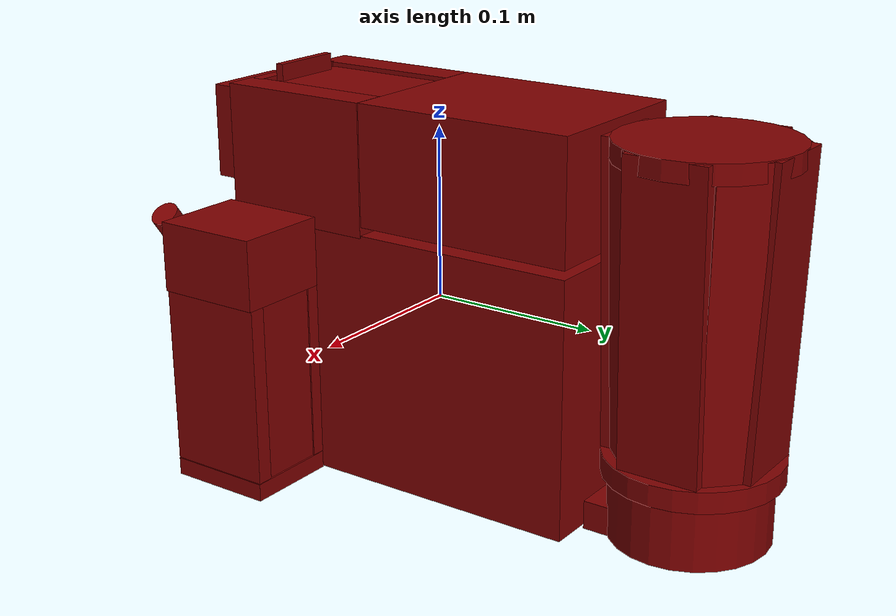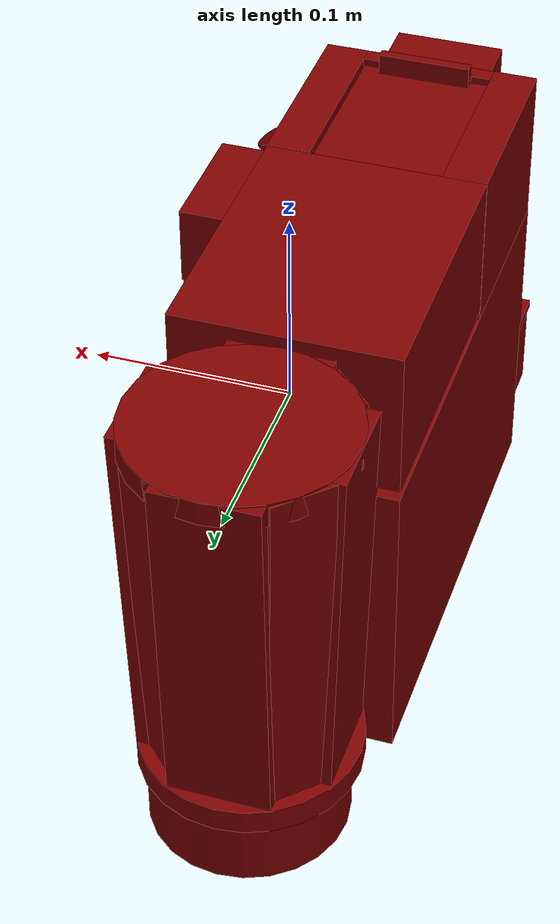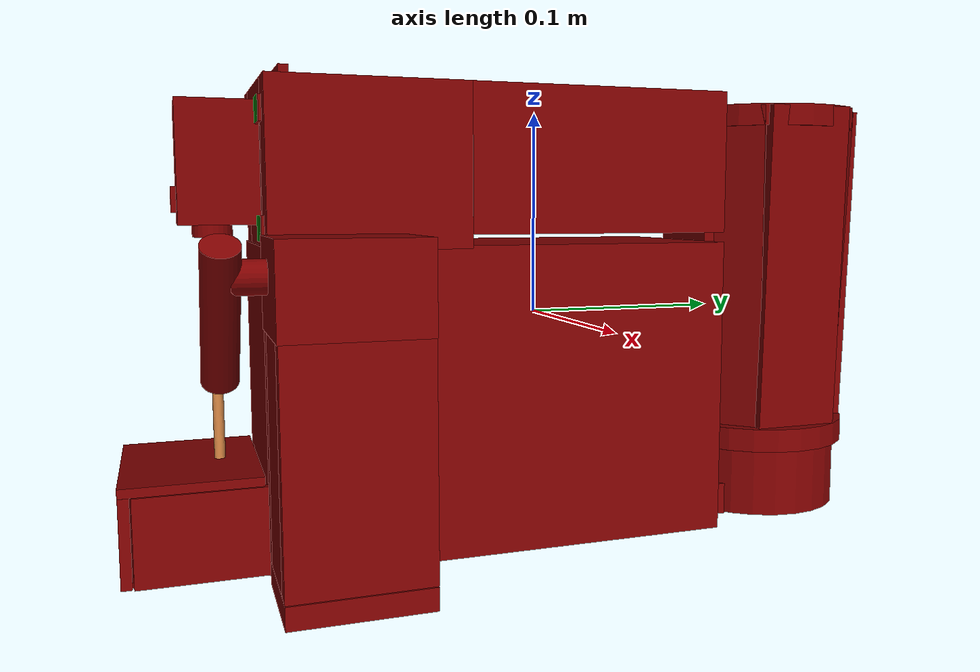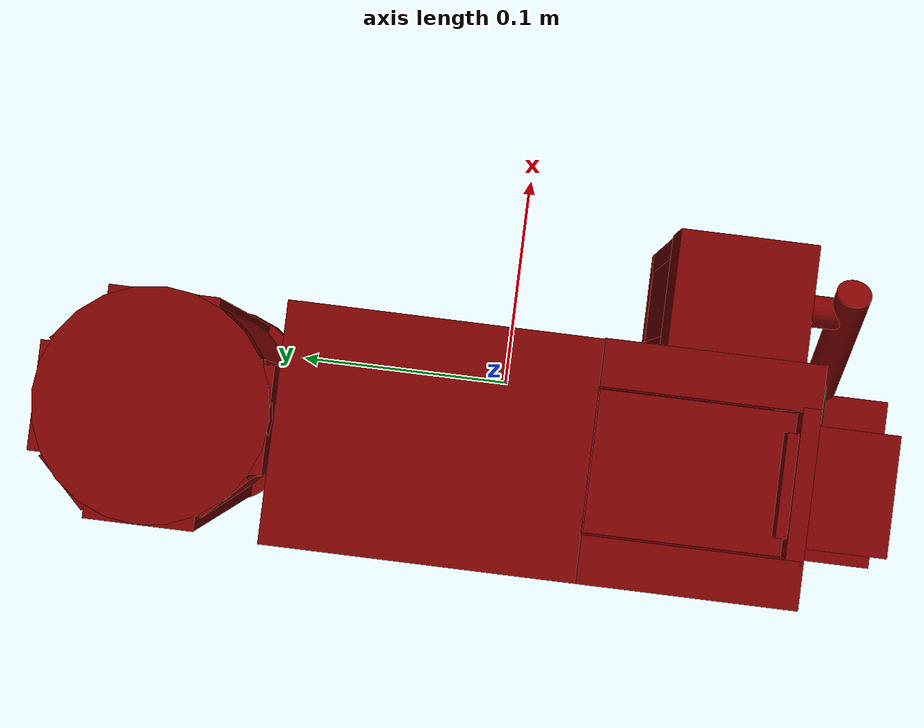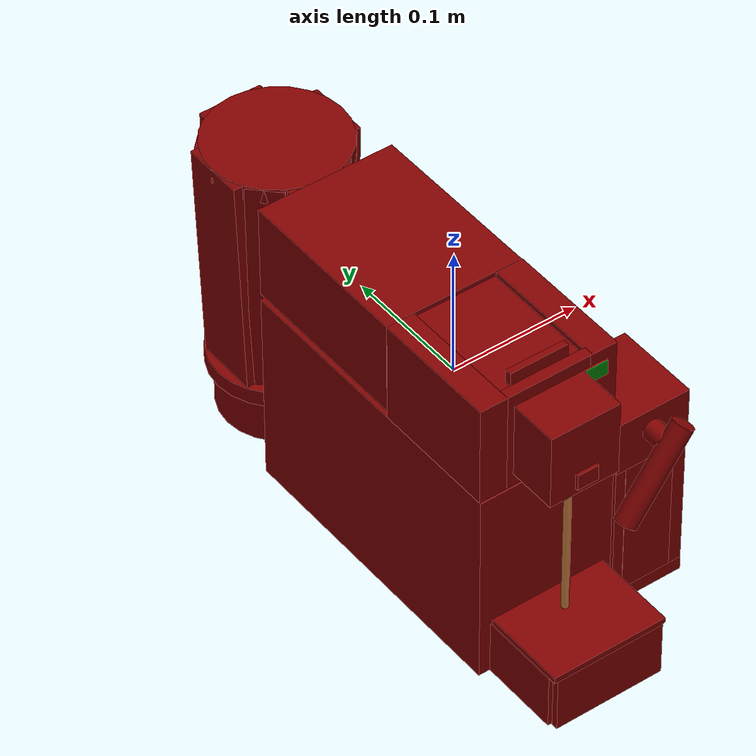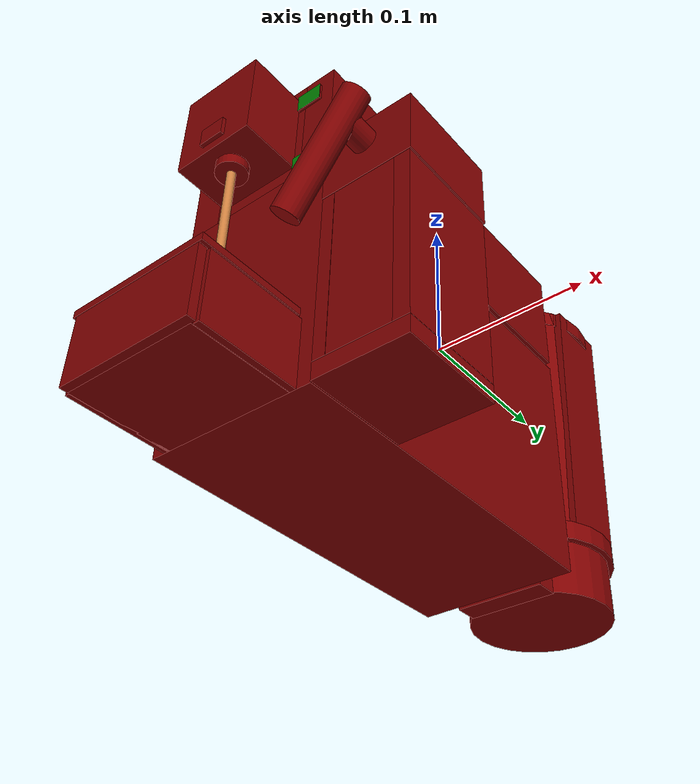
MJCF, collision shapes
<?xml version='1.0' encoding='UTF-8'?>
<mujoco model="model">
  <compiler angle="radian"/>
  <asset>
    <mesh file="visuals/Body001.obj" name="Body001_vis"/>
    <mesh file="visuals/Button001.obj" name="Button001_vis"/>
    <mesh file="visuals/Button002.obj" name="Button002_vis"/>
    <mesh file="visuals/Button003.obj" name="Button003_vis"/>
    <mesh file="visuals/Container001_Clear.obj" name="Container001_Clear_vis"/>
    <mesh file="visuals/Container002_Clear.obj" name="Container002_Clear_vis"/>
    <mesh file="visuals/Lever001.obj" name="Lever001_vis"/>
    <mesh file="visuals/Lid001.obj" name="Lid001_vis"/>
    <mesh file="visuals/Lid002.obj" name="Lid002_vis"/>
    <mesh file="visuals/Lid003.obj" name="Lid003_vis"/>
    <mesh file="visuals/Lid004.obj" name="Lid004_vis"/>
    <texture file="visuals/T_BC001.png" name="Body001_material" type="2d"/>
    <material name="Body001_material" rgba="1 1 1 1.0" texture="Body001_material" shininess="0.4472135901451111" specular="0.3103448502657381"/>
    <texture file="visuals/T_BC001.png" name="Button001_material" type="2d"/>
    <material name="Button001_material" rgba="1 1 1 1.0" texture="Button001_material" shininess="0.4472135901451111" specular="0.3103448502657381"/>
    <texture file="visuals/T_BC001.png" name="Button002_material" type="2d"/>
    <material name="Button002_material" rgba="1 1 1 1.0" texture="Button002_material" shininess="0.4472135901451111" specular="0.3103448502657381"/>
    <texture file="visuals/T_BC001.png" name="Button003_material" type="2d"/>
    <material name="Button003_material" rgba="1 1 1 1.0" texture="Button003_material" shininess="0.4472135901451111" specular="0.3103448502657381"/>
    <material name="Container001_Clear_material" rgba="0.5 0.5 0.5 0.20000000298023224" shininess="0.4472135901451111" specular="0.3103448502657381"/>
    <texture file="visuals/T_BC001.png" name="Lid003_material" type="2d"/>
    <material name="Lid003_material" rgba="1 1 1 1.0" texture="Lid003_material" shininess="0.4472135901451111" specular="0.3103448502657381"/>
    <material name="Container002_Clear_material" rgba="0.5 0.5 0.5 0.20000000298023224" shininess="0.4472135901451111" specular="0.3103448502657381"/>
    <texture file="visuals/T_BC001.png" name="Lid004_material" type="2d"/>
    <material name="Lid004_material" rgba="1 1 1 1.0" texture="Lid004_material" shininess="0.4472135901451111" specular="0.3103448502657381"/>
    <texture file="visuals/T_BC001.png" name="Lever001_material" type="2d"/>
    <material name="Lever001_material" rgba="1 1 1 1.0" texture="Lever001_material" shininess="0.4472135901451111" specular="0.3103448502657381"/>
    <texture file="visuals/T_BC001.png" name="Lid001_material" type="2d"/>
    <material name="Lid001_material" rgba="1 1 1 1.0" texture="Lid001_material" shininess="0.4472135901451111" specular="0.3103448502657381"/>
    <texture file="visuals/T_BC001.png" name="Lid002_material" type="2d"/>
    <material name="Lid002_material" rgba="1 1 1 1.0" texture="Lid002_material" shininess="0.4472135901451111" specular="0.3103448502657381"/>
  </asset>
  <default>
    <default class="visual">
      <geom conaffinity="0" contype="0" group="1" type="mesh"/>
    </default>
    <default class="collision">
      <geom group="0" rgba="0.5 0 0 0.5"/>
    </default>
    <default class="spawn">
      <geom group="0" rgba="1 1 1 0.5" contype="0" conaffinity="0"/>
      <site group="0" rgba="1 1 1 0.5"/>
    </default>
    <default class="region">
      <geom group="1" conaffinity="0" contype="0" rgba="0 1 0 0"/>
    </default>
  </default>
  <worldbody>
    <body>
      <body name="object">
        <geom class="collision" type="box" pos="0.007303 -0.138090 0.097692" size="0.008365542627871037 9.472201782045886e-05 0.005980726797133684" quat="1.0 0.0 0.0 0.0" name="start_button_1" rgba="0.0 0.5 0 0.5"/>
        <geom class="collision" type="box" pos="0.007303 -0.138090 0.043473" size="0.008365542627871037 9.472201782045886e-05 0.005980726797133684" quat="1.0 0.0 0.0 0.0" name="start_button_2" rgba="0.0 0.5 0 0.5"/>
        <site rgba="0 0 0 0" size="0.009999999776482582 0.009999999776482582" pos="-0.029297 -0.156926 -0.081818" name="receptacle_place_site"/>
        <site type="cylinder" rgba="0.8 0.5 0.25 1" size="0.0026681795716285706 0.08011214435100555" pos="-0.029156 -0.157060 -0.038757" name="coffee_liquid"/>
        <geom mesh="Body001_vis" type="mesh" solimp="0.998 0.998 0.001" solref="0.001 1" density="100" friction="0.95 0.3 0.1" class="visual" material="Body001_material"/>
        <geom class="collision" type="box" pos="-0.071654 -0.166754 -0.098076" size="0.0019627276342362165 0.03125518932938576 0.02139287441968918" quat="1.0 0.0 0.0 0.0"/>
        <geom class="collision" type="box" pos="0.012979 -0.166754 -0.098076" size="0.0019627276342362165 0.03125518932938576 0.02139287441968918" quat="1.0 0.0 0.0 0.0"/>
        <geom class="collision" type="box" pos="-0.028672 -0.201301 -0.098076" size="0.04226496070623398 0.002500868635252118 0.02139287441968918" quat="1.0 0.0 0.0 0.0"/>
        <geom class="collision" type="box" pos="-0.030036 -0.167555 -0.118164" size="0.04090132564306259 0.03143025562167168 0.0013048991095274687" quat="1.0 0.0 0.0 0.0"/>
        <geom class="collision" type="box" pos="-0.029388 -0.019622 -0.042239" size="0.052995678037405014 0.1175687164068222 0.07722990214824677" quat="1.0 0.0 0.0 0.0"/>
        <geom class="collision" type="box" pos="-0.029388 0.029261 0.076409" size="0.052995678037405014 0.0686851441860199 0.03623397275805473" quat="1.0 0.0 0.0 0.0"/>
        <geom class="collision" type="box" pos="-0.071749 -0.087885 0.073080" size="0.0106345284730196 0.04811904951930046 0.03956349566578865" quat="1.0 0.0 0.0 0.0"/>
        <geom class="collision" type="box" pos="0.013599 -0.087885 0.073080" size="0.010470953769981861 0.04811904951930046 0.03956349566578865" quat="1.0 0.0 0.0 0.0"/>
        <geom class="collision" type="box" pos="-0.028985 -0.131979 0.073080" size="0.03391892835497856 0.004024625290185213 0.03956349566578865" quat="1.0 0.0 0.0 0.0"/>
        <geom class="collision" type="box" pos="-0.029106 -0.154691 0.074028" size="0.026945386081933975 0.018662327900528908 0.029040971770882607" quat="1.0 0.0 0.0 0.0"/>
        <geom class="collision" type="box" pos="-0.029281 0.107987 -0.111434" size="0.030186869204044342 0.008108635433018208 0.008645680733025074" quat="1.0 0.0 0.0 0.0"/>
        <geom class="collision" type="cylinder" pos="-0.029107 0.151581 -0.100903" size="0.04720412567257881 0.018325699493288994" quat="1.0 0.0 0.0 0.0"/>
        <geom class="collision" type="cylinder" pos="-0.029057 -0.157061 0.042192" size="0.009545438922941685 0.003457070793956518" quat="1.0 0.0 0.0 0.0"/>
        <body name="Button001">
          <joint axis="0.0 1.0 0.0" pos="0.007387 -0.136308 0.097703" limited="true" name="Button001_joint" range="0.0 0.002" type="slide" damping="1" frictionloss="1" armature=".01" stiffness="0.05"/>
          <geom mesh="Button001_vis" type="mesh" solimp="0.998 0.998 0.001" solref="0.001 1" density="100" friction="0.95 0.3 0.1" class="visual" material="Button001_material"/>
          <geom class="collision" type="box" pos="0.007303 -0.137005 0.097692" size="0.008365542627871037 0.0006880965665914118 0.005980726797133684" quat="1.0 0.0 0.0 0.0"/>
        </body>
        <body name="Button002">
          <joint axis="0.0 1.0 0.0" pos="0.007151 -0.136308 0.043435" limited="true" name="Button002_joint" range="0.0 0.002" type="slide" damping="1" frictionloss="1" armature=".01" stiffness="0.05"/>
          <geom mesh="Button002_vis" type="mesh" solimp="0.998 0.998 0.001" solref="0.001 1" density="100" friction="0.95 0.3 0.1" class="visual" material="Button002_material"/>
          <geom class="collision" type="box" pos="0.007303 -0.137005 0.043473" size="0.008365542627871037 0.0006880965665914118 0.005980726797133684" quat="1.0 0.0 0.0 0.0"/>
        </body>
        <body name="Button003">
          <joint axis="0.0 1.0 0.0" pos="-0.028473 -0.174296 0.056605" limited="true" name="Button003_joint" range="0.0 0.002" type="slide" damping="1" frictionloss="1" armature=".01" stiffness="0.05"/>
          <geom mesh="Button003_vis" type="mesh" solimp="0.998 0.998 0.001" solref="0.001 1" density="100" friction="0.95 0.3 0.1" class="visual" material="Button003_material"/>
          <geom class="collision" type="box" pos="-0.028460 -0.174773 0.056771" size="0.008234042674303055 0.0012075260747224092 0.006142293568700552" quat="1.0 0.0 0.0 0.0"/>
        </body>
        <body name="Container001_Clear">
          <joint axis="0.0 0.0 1.0" pos="-0.030074 0.151683 0.010744" limited="true" name="Container001_Clear_joint" range="0.0 0.08" type="slide" damping="1" frictionloss="1" armature=".01" stiffness="0.05"/>
          <geom mesh="Container001_Clear_vis" type="mesh" solimp="0.998 0.998 0.001" solref="0.001 1" density="100" friction="0.95 0.3 0.1" class="visual" material="Container001_Clear_material"/>
          <geom class="collision" type="cylinder" pos="-0.030346 0.151585 -0.075835" size="0.05222243443131447 0.006352034863084555" quat="1.0 0.0 0.0 0.0"/>
          <geom class="collision" type="box" pos="-0.030731 0.194986 0.019409" size="0.024190563708543777 0.004990540444850922 0.0884857028722763" quat="0.9998824000358582 -0.01533633004873991 -0.0 0.0"/>
          <geom class="collision" type="box" pos="0.013229 0.152341 0.019409" size="0.024190563708543777 0.004990540444850922 0.0884857028722763" quat="0.7070236206054688 -0.01084443461149931 0.010844435542821884 -0.7070236206054688"/>
          <geom class="collision" type="box" pos="-0.029416 0.108381 0.019409" size="0.024190563708543777 0.004990540444850922 0.0884857028722763" quat="7.548901947984632e-08 -1.1578621395003097e-09 0.01533633004873991 -0.9998824000358582"/>
          <geom class="collision" type="box" pos="-0.073376 0.151026 0.019409" size="0.024190563708543777 0.004990540444850922 0.0884857028722763" quat="0.7070236206054688 -0.010844436474144459 -0.010844436474144459 0.7070236206054688"/>
          <geom class="collision" type="box" pos="-0.000581 0.183431 0.019409" size="0.014520161785185337 0.004990539979189634 0.0884857028722763" quat="0.9237709045410156 -0.014168939553201199 0.0058689662255346775 -0.3826383948326111"/>
          <geom class="collision" type="box" pos="0.001328 0.121846 0.019409" size="0.013553086668252945 0.004990539979189634 0.0884857028722763" quat="0.382638543844223 -0.005868968553841114 0.014168938621878624 -0.9237708449363708"/>
          <geom class="collision" type="box" pos="-0.060052 0.120423 0.019409" size="0.0133474450558424 0.004990540910512209 0.0884857028722763" quat="0.38263842463493347 -0.005868967156857252 -0.014168938621878624 0.9237709045410156"/>
          <geom class="collision" type="box" pos="-0.061871 0.181125 0.019409" size="0.015001382678747177 0.004990539979189634 0.0884857028722763" quat="0.9237708449363708 -0.014168930239975452 -0.005868963431566954 0.3826385736465454"/>
          <body name="Lid003">
            <joint axis="0.0 0.0 1.0" pos="-0.029102 0.151683 0.102330" limited="true" name="Lid003_joint" range="0.0 0.05" type="slide" damping="1" frictionloss="1" armature=".01" stiffness="0.05" springref="-10"/>
            <geom mesh="Lid003_vis" type="mesh" solimp="0.998 0.998 0.001" solref="0.001 1" density="100" friction="0.95 0.3 0.1" class="visual" material="Lid003_material"/>
            <geom class="collision" type="cylinder" pos="-0.029046 0.151861 0.102750" size="0.051870137453079224 0.00572917889803648" quat="1.0 0.0 0.0 0.0"/>
          </body>
        </body>
        <body name="Container002_Clear">
          <joint axis="0.0 0.0 1.0" pos="0.052493 -0.106209 -0.055655" limited="true" name="Container002_Clear_joint" range="0.0 0.05" type="slide" damping="1" frictionloss="1" armature=".01" stiffness="0.05"/>
          <geom mesh="Container002_Clear_vis" type="mesh" solimp="0.998 0.998 0.001" solref="0.001 1" density="100" friction="0.95 0.3 0.1" class="visual" material="Container002_Clear_material"/>
          <geom class="collision" type="box" pos="0.053207 -0.105880 -0.114446" size="0.028549982234835625 0.032707907259464264 0.005356448702514172" quat="1.0 0.0 0.0 0.0"/>
          <geom class="collision" type="box" pos="0.028704 -0.105880 -0.049861" size="0.004046385642141104 0.03270791098475456 0.05885925143957138" quat="1.0 0.0 0.0 0.0"/>
          <geom class="collision" type="box" pos="0.076658 -0.105880 -0.049861" size="0.004930246155709028 0.03270791471004486 0.05885925889015198" quat="1.0 0.0 0.0 0.0"/>
          <geom class="collision" type="box" pos="0.052351 -0.137052 -0.049861" size="0.019398266449570656 0.0015355584910139441 0.058859266340732574" quat="1.0 0.0 0.0 0.0"/>
          <geom class="collision" type="box" pos="0.052351 -0.075321 -0.049861" size="0.019398270174860954 0.0015355587238445878 0.05885927751660347" quat="1.0 0.0 0.0 0.0"/>
          <body name="Lid004">
            <joint axis="0.0 0.0 1.0" pos="0.052593 -0.106186 0.019717" limited="true" name="Lid004_joint" range="0.0 0.05" type="slide" damping="1" frictionloss="1" armature=".01" stiffness="0.05"/>
            <geom mesh="Lid004_vis" type="mesh" solimp="0.998 0.998 0.001" solref="0.001 1" density="100" friction="0.95 0.3 0.1" class="visual" material="Lid004_material"/>
            <geom class="collision" type="box" pos="0.053594 -0.106067 0.019933" size="0.028974294662475586 0.03302318975329399 0.021078703925013542" quat="1.0 0.0 0.0 0.0"/>
            <body name="Lever001">
              <joint axis="0.0 -1.0 0.0" pos="0.052434 -0.138379 0.024100" limited="true" name="Lever001_joint" range="0.0 0.6108652381980153" type="hinge" damping="1" frictionloss="1" armature=".01" stiffness="0.01" springref="-0.01"/>
              <geom mesh="Lever001_vis" type="mesh" solimp="0.998 0.998 0.001" solref="0.001 1" density="100" friction="0.95 0.3 0.1" class="visual" material="Lever001_material"/>
              <geom class="collision" type="cylinder" pos="0.052496 -0.146932 0.024138" size="0.007700102403759956 0.007528806105256081" quat="0.7071067094802856 0.7071068286895752 0.0 0.0"/>
              <geom class="collision" type="cylinder" pos="0.040014 -0.158027 0.006468" size="0.008461840450763702 0.038279566913843155" quat="0.908592939376831 0.09292283654212952 0.2880729138851166 0.2878163456916809"/>
            </body>
          </body>
        </body>
        <body name="Lid001">
          <joint axis="0.0 0.0 1.0" pos="-0.029102 -0.169710 -0.075528" limited="true" name="Lid001_joint" range="0.0 0.05" type="slide" damping="1" frictionloss="1" armature=".01" stiffness="0.05" springref="-15"/>
          <geom mesh="Lid001_vis" type="mesh" solimp="0.998 0.998 0.001" solref="0.001 1" density="100" friction="0.95 0.3 0.1" class="visual" material="Lid001_material"/>
          <geom class="collision" type="box" pos="-0.029060 -0.171447 -0.073906" size="0.044556520879268646 0.0323609784245491 0.0022306102328002453" quat="1.0 0.0 0.0 0.0"/>
        </body>
        <body name="Lid002">
          <joint axis="-1.0 0.0 0.0" pos="-0.029101 -0.041654 0.109530" limited="true" name="Lid002_joint" range="0.0 1.5707963267948966" type="hinge" damping="1" frictionloss="1" armature=".01" stiffness="0.05"/>
          <geom mesh="Lid002_vis" type="mesh" solimp="0.998 0.998 0.001" solref="0.001 1" density="100" friction="0.95 0.3 0.1" class="visual" material="Lid002_material"/>
          <geom class="collision" type="box" pos="-0.029116 -0.083192 0.108459" size="0.03118506819009781 0.0429268516600132 0.001685629365965724" quat="1.0 0.0 0.0 0.0"/>
          <geom class="collision" type="box" pos="-0.029144 -0.123674 0.115168" size="0.022576695308089256 0.002444240264594555 0.005167155526578426" quat="1.0 0.0 0.0 0.0"/>
        </body>
        <geom class="region" name="reg_main" type="box" pos="-7.299999999999668e-05 -0.0002889999999999976 -8.74999999999973e-05" size="0.08152899999999999 0.20341900000000002 0.12024750000000001"/>
      </body>
    </body>
  </worldbody>
  <actuator>
    <motor name="Button001_joint_actuator" joint="Button001_joint" gear="0.5"/>
    <motor name="Button002_joint_actuator" joint="Button002_joint" gear="0.5"/>
    <motor name="Button003_joint_actuator" joint="Button003_joint" gear="0.5"/>
    <motor name="Container001_Clear_joint_actuator" joint="Container001_Clear_joint" gear="10"/>
    <motor name="Container002_Clear_joint_actuator" joint="Container002_Clear_joint" gear="10"/>
    <motor name="Lid001_joint_actuator" joint="Lid001_joint" gear="10"/>
    <motor name="Lid002_joint_actuator" joint="Lid002_joint" gear="10"/>
    <motor name="Lid003_joint_actuator" joint="Lid003_joint" gear="10"/>
    <motor name="Lid004_joint_actuator" joint="Lid004_joint" gear="10"/>
    <motor name="Lever001_joint_actuator" joint="Lever001_joint" gear="10"/>
  </actuator>
</mujoco>
